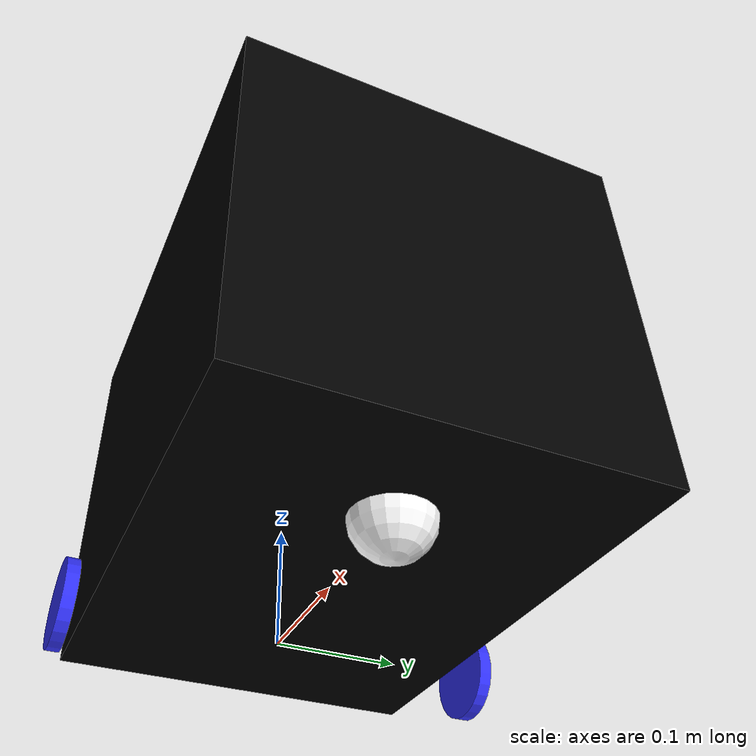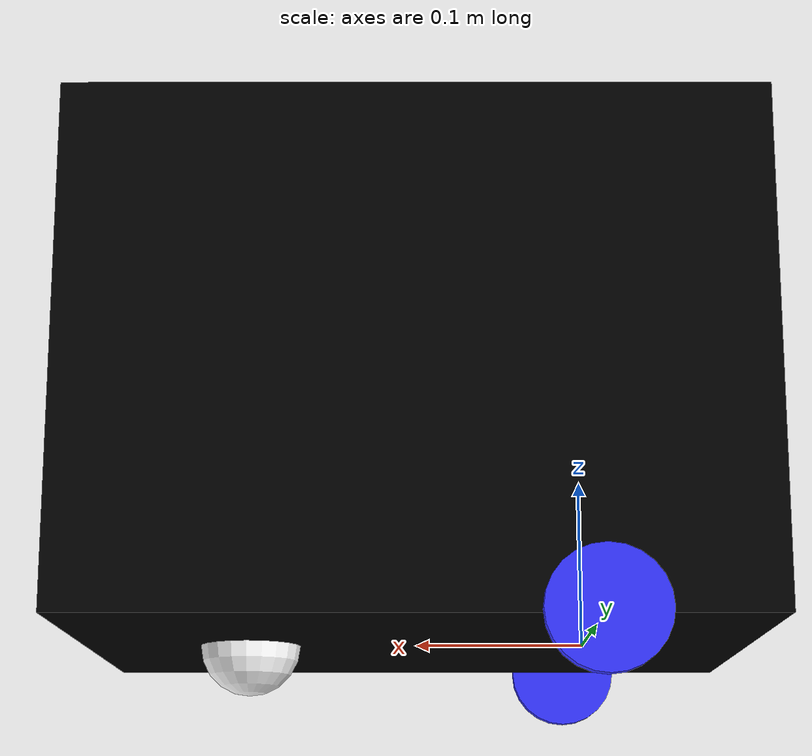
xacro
<?xml version="1.0"?>
<robot xmlns:xacro="http://www.ros.org/wiki/xacro"  name="robot">

    <xacro:include filename="inertial_macros.xacro" />

    <xacro:property name="chassis_length" value="0.4"/>

    <xacro:property name="wheel_thickness" value="0.01"/>
    <xacro:property name="wheel_offset_y" value="0.1675"/>
    <xacro:property name="wheel_radius" value="0.034"/>

    <material name="white">
        <color rgba="1 1 1 1"/>
    </material>

    <material name="blue">
        <color rgba="0.2 0.2 1 1"/>
    </material>

    <material name="black">
        <color rgba="0 0 0 1"/>
    </material>

    <material name="red">
        <color rgba="1 0 0 1"/>
    </material>

    <!-- Base link -->

    <link name="base_link">
    </link>

    <!-- Base footprint link -->

    <joint name="base_footprint_joint" type="fixed">
        <parent link="base_link" />
        <child link="base_footprint" />
        <origin xyz="0 0 0" rpy="0 0 0" />
    </joint>

    <link name="base_footprint">
    </link>

    <!-- Chassis link -->

    <joint name="chassis_joint" type="fixed">
        <parent link="base_link" />
        <child link="chassis" />
        <origin xyz="-0.1 0 0" />
    </joint>

    <link name="chassis">
        <visual>
            <origin xyz="${chassis_length/2} 0 0.15" rpy="0 0 0"/>
            <geometry>
                <box size="${chassis_length} 0.3 0.3"/>
            </geometry>
            <material name="black"/>
        </visual>

        <collision>
            <origin xyz="${chassis_length/2} 0 0.15" rpy="0 0 0"/>
            <geometry>
                <box size="${chassis_length} 0.3 0.3"/>
            </geometry>
        </collision>

        <xacro:inertial_box mass="1.0" x="${chassis_length}" y="0.3" z="0.3">
            <origin xyz="${chassis_length/2} 0 0.15" rpy="0 0 0"/>
        </xacro:inertial_box>
    </link>

    <gazebo reference="chassis">
        <material>Gazebo/Black</material>
    </gazebo>

    <!-- Left wheel link -->

    <joint name="left_wheel_joint" type="continuous">
        <parent link="base_link"/>
        <child link="left_wheel"/>
        <origin xyz="0 ${wheel_offset_y} 0" rpy="-${pi/2} 0 0"/>
        <axis xyz="0 0 1"/>
    </joint>

    <link name="left_wheel">
        <visual>
            <geometry>
                <cylinder length="${wheel_thickness}" radius="${wheel_radius}" />
            </geometry>
            <material name="blue"/>
        </visual>

        <collision>
            <geometry>
                <cylinder length="${wheel_thickness}" radius="${wheel_radius}" />
            </geometry>
        </collision>

        <xacro:inertial_cylinder mass="0.05" length="${wheel_thickness}" radius="${wheel_radius}">
            <origin xyz="0 0 0" rpy="0 0 0"/>
        </xacro:inertial_cylinder>
    </link>

    <gazebo reference="left_wheel">
        <material>Gazebo/Blue</material>
    </gazebo>

    <!-- Right wheel link -->

    <joint name="right_wheel_joint" type="continuous">
        <parent link="base_link"/>
        <child link="right_wheel"/>
        <origin xyz="0 ${-wheel_offset_y} 0" rpy="${pi/2} 0 0"/>
        <axis xyz="0 0 -1"/>
    </joint>

    <link name="right_wheel">
        <visual>
            <geometry>
                <cylinder length="${wheel_thickness}" radius="${wheel_radius}" />
            </geometry>
            <material name="blue"/>
        </visual>

        <collision>
            <geometry>
                <cylinder length="${wheel_thickness}" radius="${wheel_radius}" />
            </geometry>
        </collision>

        <xacro:inertial_cylinder mass="0.05" length="${wheel_thickness}" radius="${wheel_radius}">
            <origin xyz="0 0 0" rpy="0 0 0"/>
        </xacro:inertial_cylinder>

    </link>

    <gazebo reference="right_wheel">
        <material>Gazebo/Blue</material>
    </gazebo>

    <!-- CASTER WHEEL -->

    <joint name="caster_wheel_joint" type="fixed">
        <parent link="chassis"/>
        <child link="caster_wheel"/>
        <origin xyz="0.3 0 0" rpy="0 0 0"/>
    </joint>

    <link name="caster_wheel">
        <visual>
            <geometry>
                <sphere radius="0.03" />
            </geometry>
            <material name="white"/>
        </visual>

        <collision>
            <geometry>
                <sphere radius="0.03" />
            </geometry>
        </collision>

        <xacro:inertial_sphere mass="0.01" radius="0.03">
            <origin xyz="0 0 0" rpy="0 0 0"/>
        </xacro:inertial_sphere>
    </link>

    <gazebo reference="caster_wheel">
        <material>Gazebo/Blue</material>
        <mu1 value="0.001" />
        <mu2 value="0.001" />
    </gazebo>

</robot>
